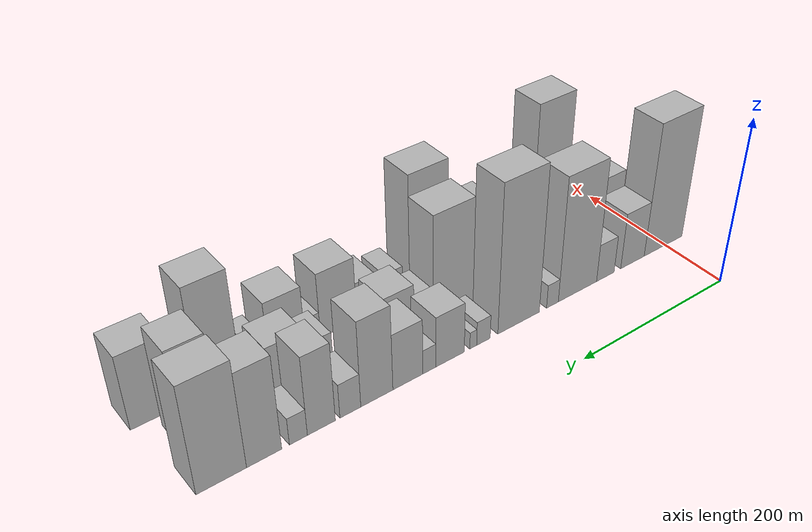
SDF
<sdf version="1.6">
 <world name="default">
  <model name="building_18">
   <static>1</static>
   <pose>100.0000 3.3115 0 0.000000 0.000000 0.000000</pose>
   <link name="link">
    <pose>0 0 84.00 0 0 0</pose>
    <collision name="collision"><geometry><box><size>40.0000 60.3289 168.0000</size></box></geometry></collision>
    <visual name="visual">
     <cast_shadows>0</cast_shadows>
     <geometry><box><size>40.0000 60.3289 168.0000</size></box></geometry>
     <material>
      <script>
       <uri>model://HANNAS_wall/materials/scripts</uri>
       <uri>model://HANNAS_wall/materials/textures</uri>
       <name>vrc/HANNAS_wall</name>
      </script>
     </material>
    </visual>
   </link>
  </model>
  <model name="building_19">
   <static>1</static>
   <pose>100.0000 51.5704 0 0.000000 0.000000 0.000000</pose>
   <link name="link">
    <pose>0 0 36.00 0 0 0</pose>
    <collision name="collision"><geometry><box><size>40.0000 36.1889 72.0000</size></box></geometry></collision>
    <visual name="visual">
     <cast_shadows>0</cast_shadows>
     <geometry><box><size>40.0000 36.1889 72.0000</size></box></geometry>
     <material>
      <script>
       <uri>model://HANNAS_wall/materials/scripts</uri>
       <uri>model://HANNAS_wall/materials/textures</uri>
       <name>vrc/HANNAS_wall</name>
      </script>
     </material>
    </visual>
   </link>
  </model>
  <model name="building_20">
   <static>1</static>
   <pose>100.0000 92.7164 0 0.000000 0.000000 0.000000</pose>
   <link name="link">
    <pose>0 0 24.00 0 0 0</pose>
    <collision name="collision"><geometry><box><size>40.0000 26.1032 48.0000</size></box></geometry></collision>
    <visual name="visual">
     <cast_shadows>0</cast_shadows>
     <geometry><box><size>40.0000 26.1032 48.0000</size></box></geometry>
     <material>
      <script>
       <uri>model://HANNAS_wall/materials/scripts</uri>
       <uri>model://HANNAS_wall/materials/textures</uri>
       <name>vrc/HANNAS_wall</name>
      </script>
     </material>
    </visual>
   </link>
  </model>
  <model name="building_21">
   <static>1</static>
   <pose>100.0000 133.3653 0 0.000000 0.000000 0.000000</pose>
   <link name="link">
    <pose>0 0 78.00 0 0 0</pose>
    <collision name="collision"><geometry><box><size>40.0000 55.1945 156.0000</size></box></geometry></collision>
    <visual name="visual">
     <cast_shadows>0</cast_shadows>
     <geometry><box><size>40.0000 55.1945 156.0000</size></box></geometry>
     <material>
      <script>
       <uri>model://HANNAS_wall/materials/scripts</uri>
       <uri>model://HANNAS_wall/materials/textures</uri>
       <name>vrc/HANNAS_wall</name>
      </script>
     </material>
    </visual>
   </link>
  </model>
  <model name="building_22">
   <static>1</static>
   <pose>100.0000 169.1781 0 0.000000 0.000000 0.000000</pose>
   <link name="link">
    <pose>0 0 15.00 0 0 0</pose>
    <collision name="collision"><geometry><box><size>40.0000 16.4310 30.0000</size></box></geometry></collision>
    <visual name="visual">
     <cast_shadows>0</cast_shadows>
     <geometry><box><size>40.0000 16.4310 30.0000</size></box></geometry>
     <material>
      <script>
       <uri>model://HANNAS_wall/materials/scripts</uri>
       <uri>model://HANNAS_wall/materials/textures</uri>
       <name>vrc/HANNAS_wall</name>
      </script>
     </material>
    </visual>
   </link>
  </model>
  <model name="building_23">
   <static>1</static>
   <pose>100.0000 215.2913 0 0.000000 0.000000 0.000000</pose>
   <link name="link">
    <pose>0 0 91.50 0 0 0</pose>
    <collision name="collision"><geometry><box><size>40.0000 55.7954 183.0000</size></box></geometry></collision>
    <visual name="visual">
     <cast_shadows>0</cast_shadows>
     <geometry><box><size>40.0000 55.7954 183.0000</size></box></geometry>
     <material>
      <script>
       <uri>model://HANNAS_wall/materials/scripts</uri>
       <uri>model://HANNAS_wall/materials/textures</uri>
       <name>vrc/HANNAS_wall</name>
      </script>
     </material>
    </visual>
   </link>
  </model>
  <model name="building_24">
   <static>1</static>
   <pose>100.0000 261.9377 0 0.000000 0.000000 0.000000</pose>
   <link name="link">
    <pose>0 0 15.00 0 0 0</pose>
    <collision name="collision"><geometry><box><size>40.0000 17.4974 30.0000</size></box></geometry></collision>
    <visual name="visual">
     <cast_shadows>0</cast_shadows>
     <geometry><box><size>40.0000 17.4974 30.0000</size></box></geometry>
     <material>
      <script>
       <uri>model://HANNAS_wall/materials/scripts</uri>
       <uri>model://HANNAS_wall/materials/textures</uri>
       <name>vrc/HANNAS_wall</name>
      </script>
     </material>
    </visual>
   </link>
  </model>
  <model name="building_25">
   <static>1</static>
   <pose>100.0000 275.0510 0 0.000000 0.000000 0.000000</pose>
   <link name="link">
    <pose>0 0 10.50 0 0 0</pose>
    <collision name="collision"><geometry><box><size>40.0000 8.7292 21.0000</size></box></geometry></collision>
    <visual name="visual">
     <cast_shadows>0</cast_shadows>
     <geometry><box><size>40.0000 8.7292 21.0000</size></box></geometry>
     <material>
      <script>
       <uri>model://HANNAS_wall/materials/scripts</uri>
       <uri>model://HANNAS_wall/materials/textures</uri>
       <name>vrc/HANNAS_wall</name>
      </script>
     </material>
    </visual>
   </link>
  </model>
  <model name="building_26">
   <static>1</static>
   <pose>100.0000 304.0262 0 0.000000 0.000000 0.000000</pose>
   <link name="link">
    <pose>0 0 31.50 0 0 0</pose>
    <collision name="collision"><geometry><box><size>40.0000 35.2212 63.0000</size></box></geometry></collision>
    <visual name="visual">
     <cast_shadows>0</cast_shadows>
     <geometry><box><size>40.0000 35.2212 63.0000</size></box></geometry>
     <material>
      <script>
       <uri>model://HANNAS_wall/materials/scripts</uri>
       <uri>model://HANNAS_wall/materials/textures</uri>
       <name>vrc/HANNAS_wall</name>
      </script>
     </material>
    </visual>
   </link>
  </model>
  <model name="building_27">
   <static>1</static>
   <pose>100.0000 329.5936 0 0.000000 0.000000 0.000000</pose>
   <link name="link">
    <pose>0 0 15.00 0 0 0</pose>
    <collision name="collision"><geometry><box><size>40.0000 15.9137 30.0000</size></box></geometry></collision>
    <visual name="visual">
     <cast_shadows>0</cast_shadows>
     <geometry><box><size>40.0000 15.9137 30.0000</size></box></geometry>
     <material>
      <script>
       <uri>model://HANNAS_wall/materials/scripts</uri>
       <uri>model://HANNAS_wall/materials/textures</uri>
       <name>vrc/HANNAS_wall</name>
      </script>
     </material>
    </visual>
   </link>
  </model>
  <model name="building_28">
   <static>1</static>
   <pose>100.0000 355.3646 0 0.000000 0.000000 0.000000</pose>
   <link name="link">
    <pose>0 0 34.50 0 0 0</pose>
    <collision name="collision"><geometry><box><size>40.0000 35.6282 69.0000</size></box></geometry></collision>
    <visual name="visual">
     <cast_shadows>0</cast_shadows>
     <geometry><box><size>40.0000 35.6282 69.0000</size></box></geometry>
     <material>
      <script>
       <uri>model://HANNAS_wall/materials/scripts</uri>
       <uri>model://HANNAS_wall/materials/textures</uri>
       <name>vrc/HANNAS_wall</name>
      </script>
     </material>
    </visual>
   </link>
  </model>
  <model name="building_29">
   <static>1</static>
   <pose>100.0000 391.6366 0 0.000000 0.000000 0.000000</pose>
   <link name="link">
    <pose>0 0 52.50 0 0 0</pose>
    <collision name="collision"><geometry><box><size>40.0000 36.9157 105.0000</size></box></geometry></collision>
    <visual name="visual">
     <cast_shadows>0</cast_shadows>
     <geometry><box><size>40.0000 36.9157 105.0000</size></box></geometry>
     <material>
      <script>
       <uri>model://HANNAS_wall/materials/scripts</uri>
       <uri>model://HANNAS_wall/materials/textures</uri>
       <name>vrc/HANNAS_wall</name>
      </script>
     </material>
    </visual>
   </link>
  </model>
  <model name="building_30">
   <static>1</static>
   <pose>100.0000 421.7339 0 0.000000 0.000000 0.000000</pose>
   <link name="link">
    <pose>0 0 21.00 0 0 0</pose>
    <collision name="collision"><geometry><box><size>40.0000 23.2790 42.0000</size></box></geometry></collision>
    <visual name="visual">
     <cast_shadows>0</cast_shadows>
     <geometry><box><size>40.0000 23.2790 42.0000</size></box></geometry>
     <material>
      <script>
       <uri>model://HANNAS_wall/materials/scripts</uri>
       <uri>model://HANNAS_wall/materials/textures</uri>
       <name>vrc/HANNAS_wall</name>
      </script>
     </material>
    </visual>
   </link>
  </model>
  <model name="building_31">
   <static>1</static>
   <pose>100.0000 453.5452 0 0.000000 0.000000 0.000000</pose>
   <link name="link">
    <pose>0 0 48.00 0 0 0</pose>
    <collision name="collision"><geometry><box><size>40.0000 30.3436 96.0000</size></box></geometry></collision>
    <visual name="visual">
     <cast_shadows>0</cast_shadows>
     <geometry><box><size>40.0000 30.3436 96.0000</size></box></geometry>
     <material>
      <script>
       <uri>model://HANNAS_wall/materials/scripts</uri>
       <uri>model://HANNAS_wall/materials/textures</uri>
       <name>vrc/HANNAS_wall</name>
      </script>
     </material>
    </visual>
   </link>
  </model>
  <model name="building_32">
   <static>1</static>
   <pose>100.0000 478.2213 0 0.000000 0.000000 0.000000</pose>
   <link name="link">
    <pose>0 0 16.50 0 0 0</pose>
    <collision name="collision"><geometry><box><size>40.0000 19.0085 33.0000</size></box></geometry></collision>
    <visual name="visual">
     <cast_shadows>0</cast_shadows>
     <geometry><box><size>40.0000 19.0085 33.0000</size></box></geometry>
     <material>
      <script>
       <uri>model://HANNAS_wall/materials/scripts</uri>
       <uri>model://HANNAS_wall/materials/textures</uri>
       <name>vrc/HANNAS_wall</name>
      </script>
     </material>
    </visual>
   </link>
  </model>
  <model name="building_33">
   <static>1</static>
   <pose>100.0000 513.7080 0 0.000000 0.000000 0.000000</pose>
   <link name="link">
    <pose>0 0 57.00 0 0 0</pose>
    <collision name="collision"><geometry><box><size>40.0000 35.9650 114.0000</size></box></geometry></collision>
    <visual name="visual">
     <cast_shadows>0</cast_shadows>
     <geometry><box><size>40.0000 35.9650 114.0000</size></box></geometry>
     <material>
      <script>
       <uri>model://HANNAS_wall/materials/scripts</uri>
       <uri>model://HANNAS_wall/materials/textures</uri>
       <name>vrc/HANNAS_wall</name>
      </script>
     </material>
    </visual>
   </link>
  </model>
  <model name="building_34">
   <static>1</static>
   <pose>100.0000 556.5723 0 0.000000 0.000000 0.000000</pose>
   <link name="link">
    <pose>0 0 64.50 0 0 0</pose>
    <collision name="collision"><geometry><box><size>40.0000 49.7636 129.0000</size></box></geometry></collision>
    <visual name="visual">
     <cast_shadows>0</cast_shadows>
     <geometry><box><size>40.0000 49.7636 129.0000</size></box></geometry>
     <material>
      <script>
       <uri>model://HANNAS_wall/materials/scripts</uri>
       <uri>model://HANNAS_wall/materials/textures</uri>
       <name>vrc/HANNAS_wall</name>
      </script>
     </material>
    </visual>
   </link>
  </model>
  <model name="building_49">
   <static>1</static>
   <pose>152.0000 41.7563 0 0.000000 0.000000 0.000000</pose>
   <link name="link">
    <pose>0 0 40.50 0 0 0</pose>
    <collision name="collision"><geometry><box><size>40.0000 42.6824 81.0000</size></box></geometry></collision>
    <visual name="visual">
     <cast_shadows>0</cast_shadows>
     <geometry><box><size>40.0000 42.6824 81.0000</size></box></geometry>
     <material>
      <script>
       <uri>model://HANNAS_wall/materials/scripts</uri>
       <uri>model://HANNAS_wall/materials/textures</uri>
       <name>vrc/HANNAS_wall</name>
      </script>
     </material>
    </visual>
   </link>
  </model>
  <model name="building_50">
   <static>1</static>
   <pose>152.0000 72.0934 0 0.000000 0.000000 0.000000</pose>
   <link name="link">
    <pose>0 0 16.50 0 0 0</pose>
    <collision name="collision"><geometry><box><size>40.0000 17.9917 33.0000</size></box></geometry></collision>
    <visual name="visual">
     <cast_shadows>0</cast_shadows>
     <geometry><box><size>40.0000 17.9917 33.0000</size></box></geometry>
     <material>
      <script>
       <uri>model://HANNAS_wall/materials/scripts</uri>
       <uri>model://HANNAS_wall/materials/textures</uri>
       <name>vrc/HANNAS_wall</name>
      </script>
     </material>
    </visual>
   </link>
  </model>
  <model name="building_51">
   <static>1</static>
   <pose>152.0000 101.7214 0 0.000000 0.000000 0.000000</pose>
   <link name="link">
    <pose>0 0 34.50 0 0 0</pose>
    <collision name="collision"><geometry><box><size>40.0000 41.2645 69.0000</size></box></geometry></collision>
    <visual name="visual">
     <cast_shadows>0</cast_shadows>
     <geometry><box><size>40.0000 41.2645 69.0000</size></box></geometry>
     <material>
      <script>
       <uri>model://HANNAS_wall/materials/scripts</uri>
       <uri>model://HANNAS_wall/materials/textures</uri>
       <name>vrc/HANNAS_wall</name>
      </script>
     </material>
    </visual>
   </link>
  </model>
  <model name="building_52">
   <static>1</static>
   <pose>152.0000 141.6499 0 0.000000 0.000000 0.000000</pose>
   <link name="link">
    <pose>0 0 33.00 0 0 0</pose>
    <collision name="collision"><geometry><box><size>40.0000 38.5925 66.0000</size></box></geometry></collision>
    <visual name="visual">
     <cast_shadows>0</cast_shadows>
     <geometry><box><size>40.0000 38.5925 66.0000</size></box></geometry>
     <material>
      <script>
       <uri>model://HANNAS_wall/materials/scripts</uri>
       <uri>model://HANNAS_wall/materials/textures</uri>
       <name>vrc/HANNAS_wall</name>
      </script>
     </material>
    </visual>
   </link>
  </model>
  <model name="building_53">
   <static>1</static>
   <pose>152.0000 178.3132 0 0.000000 0.000000 0.000000</pose>
   <link name="link">
    <pose>0 0 33.00 0 0 0</pose>
    <collision name="collision"><geometry><box><size>40.0000 34.7341 66.0000</size></box></geometry></collision>
    <visual name="visual">
     <cast_shadows>0</cast_shadows>
     <geometry><box><size>40.0000 34.7341 66.0000</size></box></geometry>
     <material>
      <script>
       <uri>model://HANNAS_wall/materials/scripts</uri>
       <uri>model://HANNAS_wall/materials/textures</uri>
       <name>vrc/HANNAS_wall</name>
      </script>
     </material>
    </visual>
   </link>
  </model>
  <model name="building_54">
   <static>1</static>
   <pose>152.0000 214.1476 0 0.000000 0.000000 0.000000</pose>
   <link name="link">
    <pose>0 0 31.50 0 0 0</pose>
    <collision name="collision"><geometry><box><size>40.0000 36.9346 63.0000</size></box></geometry></collision>
    <visual name="visual">
     <cast_shadows>0</cast_shadows>
     <geometry><box><size>40.0000 36.9346 63.0000</size></box></geometry>
     <material>
      <script>
       <uri>model://HANNAS_wall/materials/scripts</uri>
       <uri>model://HANNAS_wall/materials/textures</uri>
       <name>vrc/HANNAS_wall</name>
      </script>
     </material>
    </visual>
   </link>
  </model>
  <model name="building_55">
   <static>1</static>
   <pose>152.0000 258.7422 0 0.000000 0.000000 0.000000</pose>
   <link name="link">
    <pose>0 0 67.50 0 0 0</pose>
    <collision name="collision"><geometry><box><size>40.0000 52.2546 135.0000</size></box></geometry></collision>
    <visual name="visual">
     <cast_shadows>0</cast_shadows>
     <geometry><box><size>40.0000 52.2546 135.0000</size></box></geometry>
     <material>
      <script>
       <uri>model://HANNAS_wall/materials/scripts</uri>
       <uri>model://HANNAS_wall/materials/textures</uri>
       <name>vrc/HANNAS_wall</name>
      </script>
     </material>
    </visual>
   </link>
  </model>
  <model name="building_56">
   <static>1</static>
   <pose>152.0000 296.9692 0 0.000000 0.000000 0.000000</pose>
   <link name="link">
    <pose>0 0 22.50 0 0 0</pose>
    <collision name="collision"><geometry><box><size>40.0000 24.1995 45.0000</size></box></geometry></collision>
    <visual name="visual">
     <cast_shadows>0</cast_shadows>
     <geometry><box><size>40.0000 24.1995 45.0000</size></box></geometry>
     <material>
      <script>
       <uri>model://HANNAS_wall/materials/scripts</uri>
       <uri>model://HANNAS_wall/materials/textures</uri>
       <name>vrc/HANNAS_wall</name>
      </script>
     </material>
    </visual>
   </link>
  </model>
  <model name="building_57">
   <static>1</static>
   <pose>152.0000 327.7760 0 0.000000 0.000000 0.000000</pose>
   <link name="link">
    <pose>0 0 31.50 0 0 0</pose>
    <collision name="collision"><geometry><box><size>40.0000 37.4141 63.0000</size></box></geometry></collision>
    <visual name="visual">
     <cast_shadows>0</cast_shadows>
     <geometry><box><size>40.0000 37.4141 63.0000</size></box></geometry>
     <material>
      <script>
       <uri>model://HANNAS_wall/materials/scripts</uri>
       <uri>model://HANNAS_wall/materials/textures</uri>
       <name>vrc/HANNAS_wall</name>
      </script>
     </material>
    </visual>
   </link>
  </model>
  <model name="building_58">
   <static>1</static>
   <pose>152.0000 419.4962 0 0.000000 0.000000 0.000000</pose>
   <link name="link">
    <pose>0 0 27.00 0 0 0</pose>
    <collision name="collision"><geometry><box><size>40.0000 28.0087 54.0000</size></box></geometry></collision>
    <visual name="visual">
     <cast_shadows>0</cast_shadows>
     <geometry><box><size>40.0000 28.0087 54.0000</size></box></geometry>
     <material>
      <script>
       <uri>model://HANNAS_wall/materials/scripts</uri>
       <uri>model://HANNAS_wall/materials/textures</uri>
       <name>vrc/HANNAS_wall</name>
      </script>
     </material>
    </visual>
   </link>
  </model>
  <model name="building_59">
   <static>1</static>
   <pose>152.0000 454.4222 0 0.000000 0.000000 0.000000</pose>
   <link name="link">
    <pose>0 0 36.00 0 0 0</pose>
    <collision name="collision"><geometry><box><size>40.0000 41.8433 72.0000</size></box></geometry></collision>
    <visual name="visual">
     <cast_shadows>0</cast_shadows>
     <geometry><box><size>40.0000 41.8433 72.0000</size></box></geometry>
     <material>
      <script>
       <uri>model://HANNAS_wall/materials/scripts</uri>
       <uri>model://HANNAS_wall/materials/textures</uri>
       <name>vrc/HANNAS_wall</name>
      </script>
     </material>
    </visual>
   </link>
  </model>
  <model name="building_60">
   <static>1</static>
   <pose>152.0000 488.0636 0 0.000000 0.000000 0.000000</pose>
   <link name="link">
    <pose>0 0 22.50 0 0 0</pose>
    <collision name="collision"><geometry><box><size>40.0000 25.4396 45.0000</size></box></geometry></collision>
    <visual name="visual">
     <cast_shadows>0</cast_shadows>
     <geometry><box><size>40.0000 25.4396 45.0000</size></box></geometry>
     <material>
      <script>
       <uri>model://HANNAS_wall/materials/scripts</uri>
       <uri>model://HANNAS_wall/materials/textures</uri>
       <name>vrc/HANNAS_wall</name>
      </script>
     </material>
    </visual>
   </link>
  </model>
  <model name="building_61">
   <static>1</static>
   <pose>152.0000 517.4692 0 0.000000 0.000000 0.000000</pose>
   <link name="link">
    <pose>0 0 22.50 0 0 0</pose>
    <collision name="collision"><geometry><box><size>40.0000 23.3714 45.0000</size></box></geometry></collision>
    <visual name="visual">
     <cast_shadows>0</cast_shadows>
     <geometry><box><size>40.0000 23.3714 45.0000</size></box></geometry>
     <material>
      <script>
       <uri>model://HANNAS_wall/materials/scripts</uri>
       <uri>model://HANNAS_wall/materials/textures</uri>
       <name>vrc/HANNAS_wall</name>
      </script>
     </material>
    </visual>
   </link>
  </model>
  <model name="building_62">
   <static>1</static>
   <pose>152.0000 548.2094 0 0.000000 0.000000 0.000000</pose>
   <link name="link">
    <pose>0 0 60.00 0 0 0</pose>
    <collision name="collision"><geometry><box><size>40.0000 38.1090 120.0000</size></box></geometry></collision>
    <visual name="visual">
     <cast_shadows>0</cast_shadows>
     <geometry><box><size>40.0000 38.1090 120.0000</size></box></geometry>
     <material>
      <script>
       <uri>model://HANNAS_wall/materials/scripts</uri>
       <uri>model://HANNAS_wall/materials/textures</uri>
       <name>vrc/HANNAS_wall</name>
      </script>
     </material>
    </visual>
   </link>
  </model>
  <model name="building_79">
   <static>1</static>
   <pose>204.0000 22.2467 0 0.000000 0.000000 0.000000</pose>
   <link name="link">
    <pose>0 0 9.00 0 0 0</pose>
    <collision name="collision"><geometry><box><size>40.0000 7.8836 18.0000</size></box></geometry></collision>
    <visual name="visual">
     <cast_shadows>0</cast_shadows>
     <geometry><box><size>40.0000 7.8836 18.0000</size></box></geometry>
     <material>
      <script>
       <uri>model://HANNAS_wall/materials/scripts</uri>
       <uri>model://HANNAS_wall/materials/textures</uri>
       <name>vrc/HANNAS_wall</name>
      </script>
     </material>
    </visual>
   </link>
  </model>
  <model name="building_80">
   <static>1</static>
   <pose>204.0000 40.1122 0 0.000000 0.000000 0.000000</pose>
   <link name="link">
    <pose>0 0 19.50 0 0 0</pose>
    <collision name="collision"><geometry><box><size>40.0000 21.8474 39.0000</size></box></geometry></collision>
    <visual name="visual">
     <cast_shadows>0</cast_shadows>
     <geometry><box><size>40.0000 21.8474 39.0000</size></box></geometry>
     <material>
      <script>
       <uri>model://HANNAS_wall/materials/scripts</uri>
       <uri>model://HANNAS_wall/materials/textures</uri>
       <name>vrc/HANNAS_wall</name>
      </script>
     </material>
    </visual>
   </link>
  </model>
  <model name="building_81">
   <static>1</static>
   <pose>204.0000 79.6915 0 0.000000 0.000000 0.000000</pose>
   <link name="link">
    <pose>0 0 84.00 0 0 0</pose>
    <collision name="collision"><geometry><box><size>40.0000 51.3113 168.0000</size></box></geometry></collision>
    <visual name="visual">
     <cast_shadows>0</cast_shadows>
     <geometry><box><size>40.0000 51.3113 168.0000</size></box></geometry>
     <material>
      <script>
       <uri>model://HANNAS_wall/materials/scripts</uri>
       <uri>model://HANNAS_wall/materials/textures</uri>
       <name>vrc/HANNAS_wall</name>
      </script>
     </material>
    </visual>
   </link>
  </model>
  <model name="building_82">
   <static>1</static>
   <pose>204.0000 134.2931 0 0.000000 0.000000 0.000000</pose>
   <link name="link">
    <pose>0 0 33.00 0 0 0</pose>
    <collision name="collision"><geometry><box><size>40.0000 37.8919 66.0000</size></box></geometry></collision>
    <visual name="visual">
     <cast_shadows>0</cast_shadows>
     <geometry><box><size>40.0000 37.8919 66.0000</size></box></geometry>
     <material>
      <script>
       <uri>model://HANNAS_wall/materials/scripts</uri>
       <uri>model://HANNAS_wall/materials/textures</uri>
       <name>vrc/HANNAS_wall</name>
      </script>
     </material>
    </visual>
   </link>
  </model>
  <model name="building_83">
   <static>1</static>
   <pose>204.0000 180.1145 0 0.000000 0.000000 0.000000</pose>
   <link name="link">
    <pose>0 0 37.50 0 0 0</pose>
    <collision name="collision"><geometry><box><size>40.0000 37.7509 75.0000</size></box></geometry></collision>
    <visual name="visual">
     <cast_shadows>0</cast_shadows>
     <geometry><box><size>40.0000 37.7509 75.0000</size></box></geometry>
     <material>
      <script>
       <uri>model://HANNAS_wall/materials/scripts</uri>
       <uri>model://HANNAS_wall/materials/textures</uri>
       <name>vrc/HANNAS_wall</name>
      </script>
     </material>
    </visual>
   </link>
  </model>
  <model name="building_84">
   <static>1</static>
   <pose>204.0000 212.4514 0 0.000000 0.000000 0.000000</pose>
   <link name="link">
    <pose>0 0 25.50 0 0 0</pose>
    <collision name="collision"><geometry><box><size>40.0000 26.9230 51.0000</size></box></geometry></collision>
    <visual name="visual">
     <cast_shadows>0</cast_shadows>
     <geometry><box><size>40.0000 26.9230 51.0000</size></box></geometry>
     <material>
      <script>
       <uri>model://HANNAS_wall/materials/scripts</uri>
       <uri>model://HANNAS_wall/materials/textures</uri>
       <name>vrc/HANNAS_wall</name>
      </script>
     </material>
    </visual>
   </link>
  </model>
  <model name="building_85">
   <static>1</static>
   <pose>204.0000 251.0109 0 0.000000 0.000000 0.000000</pose>
   <link name="link">
    <pose>0 0 75.00 0 0 0</pose>
    <collision name="collision"><geometry><box><size>40.0000 50.1960 150.0000</size></box></geometry></collision>
    <visual name="visual">
     <cast_shadows>0</cast_shadows>
     <geometry><box><size>40.0000 50.1960 150.0000</size></box></geometry>
     <material>
      <script>
       <uri>model://HANNAS_wall/materials/scripts</uri>
       <uri>model://HANNAS_wall/materials/textures</uri>
       <name>vrc/HANNAS_wall</name>
      </script>
     </material>
    </visual>
   </link>
  </model>
  <model name="building_86">
   <static>1</static>
   <pose>204.0000 296.6893 0 0.000000 0.000000 0.000000</pose>
   <link name="link">
    <pose>0 0 21.00 0 0 0</pose>
    <collision name="collision"><geometry><box><size>40.0000 23.1609 42.0000</size></box></geometry></collision>
    <visual name="visual">
     <cast_shadows>0</cast_shadows>
     <geometry><box><size>40.0000 23.1609 42.0000</size></box></geometry>
     <material>
      <script>
       <uri>model://HANNAS_wall/materials/scripts</uri>
       <uri>model://HANNAS_wall/materials/textures</uri>
       <name>vrc/HANNAS_wall</name>
      </script>
     </material>
    </visual>
   </link>
  </model>
  <model name="building_87">
   <static>1</static>
   <pose>204.0000 330.9870 0 0.000000 0.000000 0.000000</pose>
   <link name="link">
    <pose>0 0 24.00 0 0 0</pose>
    <collision name="collision"><geometry><box><size>40.0000 25.4345 48.0000</size></box></geometry></collision>
    <visual name="visual">
     <cast_shadows>0</cast_shadows>
     <geometry><box><size>40.0000 25.4345 48.0000</size></box></geometry>
     <material>
      <script>
       <uri>model://HANNAS_wall/materials/scripts</uri>
       <uri>model://HANNAS_wall/materials/textures</uri>
       <name>vrc/HANNAS_wall</name>
      </script>
     </material>
    </visual>
   </link>
  </model>
  <model name="building_88">
   <static>1</static>
   <pose>204.0000 365.5047 0 0.000000 0.000000 0.000000</pose>
   <link name="link">
    <pose>0 0 40.50 0 0 0</pose>
    <collision name="collision"><geometry><box><size>40.0000 43.6008 81.0000</size></box></geometry></collision>
    <visual name="visual">
     <cast_shadows>0</cast_shadows>
     <geometry><box><size>40.0000 43.6008 81.0000</size></box></geometry>
     <material>
      <script>
       <uri>model://HANNAS_wall/materials/scripts</uri>
       <uri>model://HANNAS_wall/materials/textures</uri>
       <name>vrc/HANNAS_wall</name>
      </script>
     </material>
    </visual>
   </link>
  </model>
  <model name="building_89">
   <static>1</static>
   <pose>204.0000 396.2415 0 0.000000 0.000000 0.000000</pose>
   <link name="link">
    <pose>0 0 16.50 0 0 0</pose>
    <collision name="collision"><geometry><box><size>40.0000 17.8728 33.0000</size></box></geometry></collision>
    <visual name="visual">
     <cast_shadows>0</cast_shadows>
     <geometry><box><size>40.0000 17.8728 33.0000</size></box></geometry>
     <material>
      <script>
       <uri>model://HANNAS_wall/materials/scripts</uri>
       <uri>model://HANNAS_wall/materials/textures</uri>
       <name>vrc/HANNAS_wall</name>
      </script>
     </material>
    </visual>
   </link>
  </model>
  <model name="building_90">
   <static>1</static>
   <pose>204.0000 425.8992 0 0.000000 0.000000 0.000000</pose>
   <link name="link">
    <pose>0 0 37.50 0 0 0</pose>
    <collision name="collision"><geometry><box><size>40.0000 41.4427 75.0000</size></box></geometry></collision>
    <visual name="visual">
     <cast_shadows>0</cast_shadows>
     <geometry><box><size>40.0000 41.4427 75.0000</size></box></geometry>
     <material>
      <script>
       <uri>model://HANNAS_wall/materials/scripts</uri>
       <uri>model://HANNAS_wall/materials/textures</uri>
       <name>vrc/HANNAS_wall</name>
      </script>
     </material>
    </visual>
   </link>
  </model>
  <model name="building_91">
   <static>1</static>
   <pose>204.0000 459.2046 0 0.000000 0.000000 0.000000</pose>
   <link name="link">
    <pose>0 0 18.00 0 0 0</pose>
    <collision name="collision"><geometry><box><size>40.0000 19.1681 36.0000</size></box></geometry></collision>
    <visual name="visual">
     <cast_shadows>0</cast_shadows>
     <geometry><box><size>40.0000 19.1681 36.0000</size></box></geometry>
     <material>
      <script>
       <uri>model://HANNAS_wall/materials/scripts</uri>
       <uri>model://HANNAS_wall/materials/textures</uri>
       <name>vrc/HANNAS_wall</name>
      </script>
     </material>
    </visual>
   </link>
  </model>
  <model name="building_92">
   <static>1</static>
   <pose>204.0000 500.1604 0 0.000000 0.000000 0.000000</pose>
   <link name="link">
    <pose>0 0 66.00 0 0 0</pose>
    <collision name="collision"><geometry><box><size>40.0000 44.7435 132.0000</size></box></geometry></collision>
    <visual name="visual">
     <cast_shadows>0</cast_shadows>
     <geometry><box><size>40.0000 44.7435 132.0000</size></box></geometry>
     <material>
      <script>
       <uri>model://HANNAS_wall/materials/scripts</uri>
       <uri>model://HANNAS_wall/materials/textures</uri>
       <name>vrc/HANNAS_wall</name>
      </script>
     </material>
    </visual>
   </link>
  </model>
  <model name="building_93">
   <static>1</static>
   <pose>204.0000 535.1479 0 0.000000 0.000000 0.000000</pose>
   <link name="link">
    <pose>0 0 24.00 0 0 0</pose>
    <collision name="collision"><geometry><box><size>40.0000 25.2316 48.0000</size></box></geometry></collision>
    <visual name="visual">
     <cast_shadows>0</cast_shadows>
     <geometry><box><size>40.0000 25.2316 48.0000</size></box></geometry>
     <material>
      <script>
       <uri>model://HANNAS_wall/materials/scripts</uri>
       <uri>model://HANNAS_wall/materials/textures</uri>
       <name>vrc/HANNAS_wall</name>
      </script>
     </material>
    </visual>
   </link>
  </model>
  <model name="building_94">
   <static>1</static>
   <pose>204.0000 570.4630 0 0.000000 0.000000 0.000000</pose>
   <link name="link">
    <pose>0 0 45.00 0 0 0</pose>
    <collision name="collision"><geometry><box><size>40.0000 45.3985 90.0000</size></box></geometry></collision>
    <visual name="visual">
     <cast_shadows>0</cast_shadows>
     <geometry><box><size>40.0000 45.3985 90.0000</size></box></geometry>
     <material>
      <script>
       <uri>model://HANNAS_wall/materials/scripts</uri>
       <uri>model://HANNAS_wall/materials/textures</uri>
       <name>vrc/HANNAS_wall</name>
      </script>
     </material>
    </visual>
   </link>
  </model>
 </world>
</sdf>
